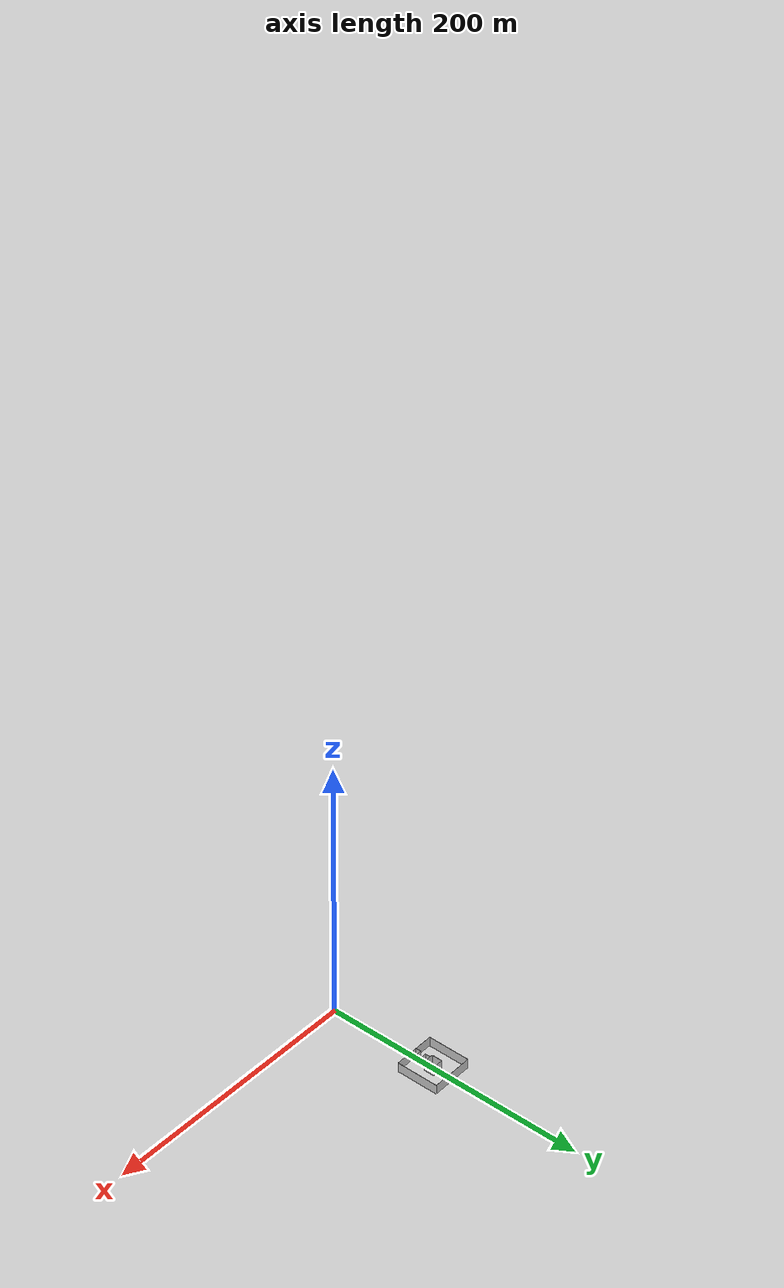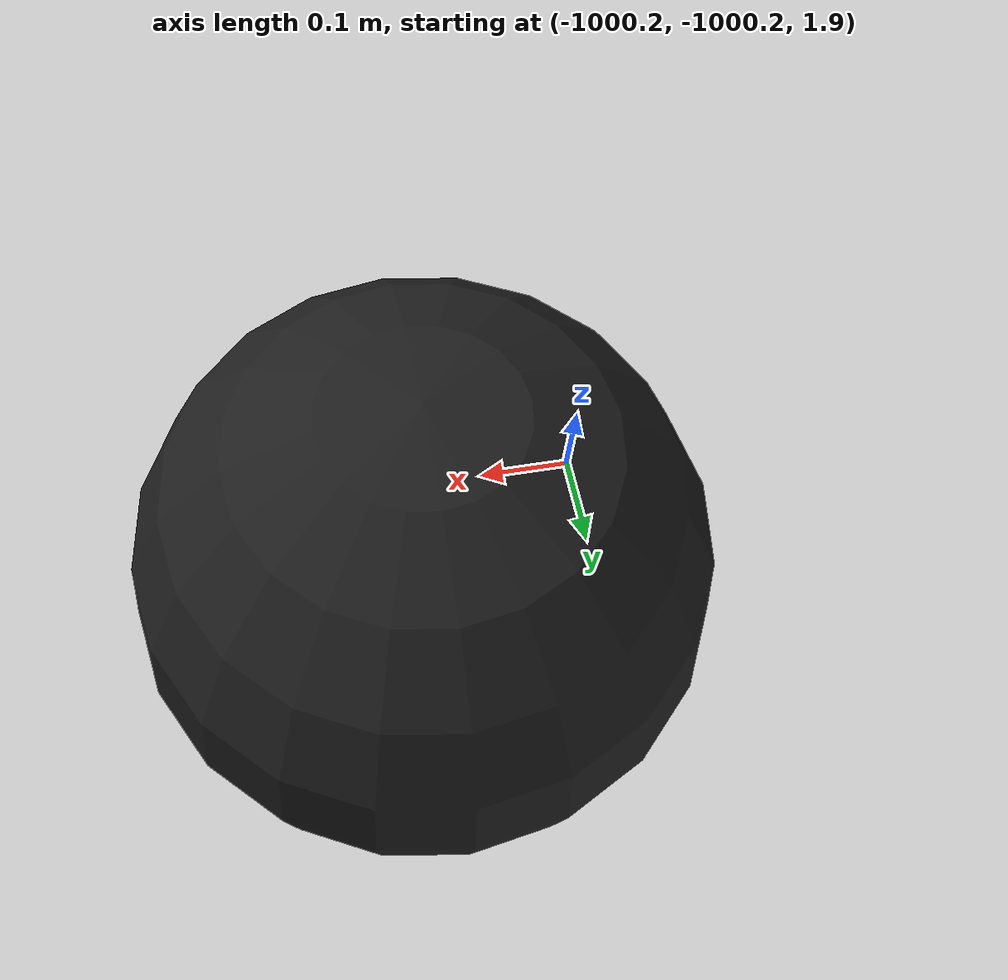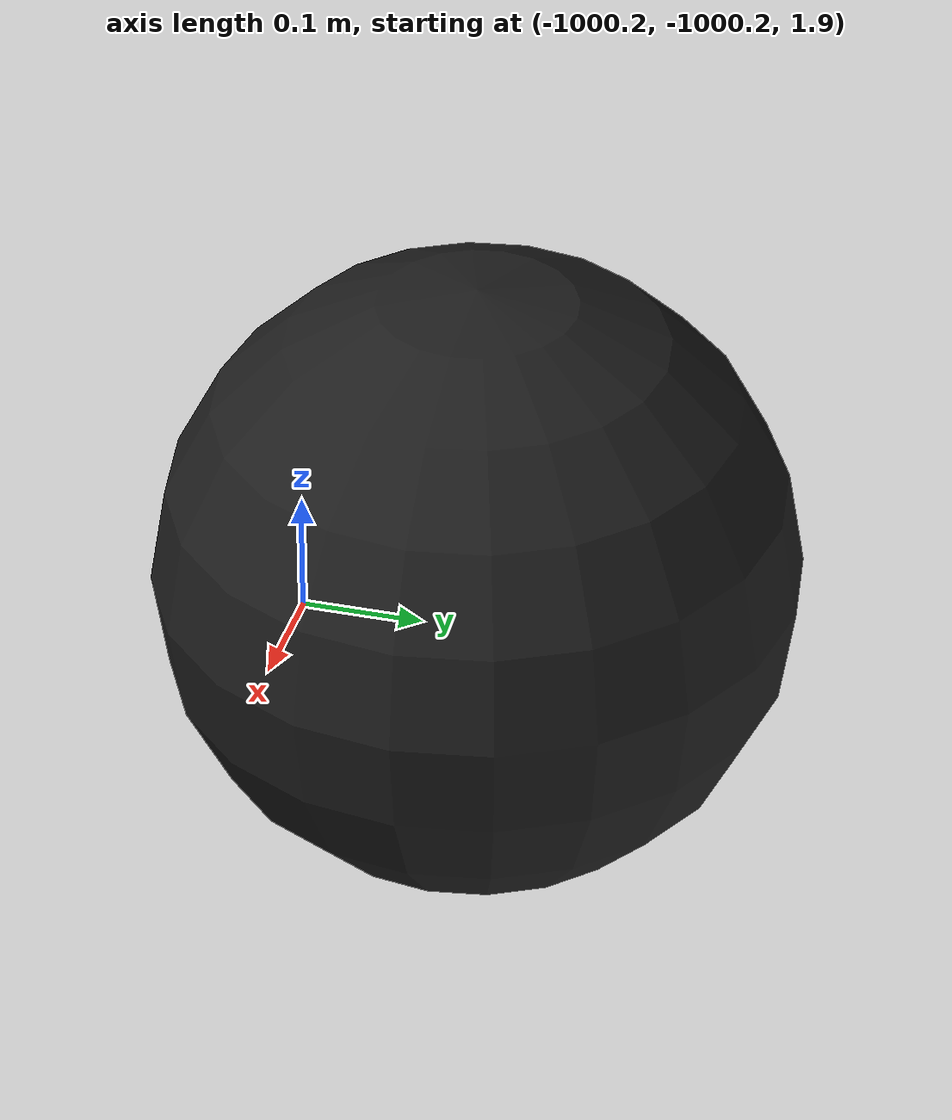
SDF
<sdf version="1.7">
 <world name="default">
  <plugin name="mrs_gazebo_static_transform_republisher_plugin" filename="libMRSGazeboStaticTransformRepublisher.so"/>
  <spherical_coordinates>
   <surface_model>EARTH_WGS84</surface_model>
   <latitude_deg>47.3977</latitude_deg>
   <longitude_deg>8.54559</longitude_deg>
   <elevation>0</elevation>
   <heading_deg>0</heading_deg>
  </spherical_coordinates>
  <physics name="default_physics" default="0" type="ode">
   <ode>
    <solver>
     <type>quick</type>
     <iters>10</iters>
     <sor>1.3</sor>
     <use_dynamic_moi_rescaling>0</use_dynamic_moi_rescaling>
    </solver>
    <constraints>
     <cfm>0</cfm>
     <erp>0.2</erp>
     <contact_max_correcting_vel>1000</contact_max_correcting_vel>
     <contact_surface_layer>0.001</contact_surface_layer>
    </constraints>
   </ode>
   <max_step_size>0.004</max_step_size>
   <real_time_factor>1</real_time_factor>
   <real_time_update_rate>250</real_time_update_rate>
  </physics>
  <scene><shadows>0</shadows><ambient>0.4 0.4 0.4 1</ambient><background>0.7 0.7 0.7 1</background></scene>
  <light name="sun" type="directional">
   <pose>0 0 1000 0.4 0.2 0</pose>
   <diffuse>1 1 1 1</diffuse>
   <specular>0.6 0.6 0.6 1</specular>
   <direction>0.1 0.1 -0.9</direction>
   <attenuation>
    <range>20</range>
    <constant>0.5</constant>
    <linear>0.01</linear>
    <quadratic>0.001</quadratic>
   </attenuation>
   <spot><inner_angle>0</inner_angle><outer_angle>0</outer_angle><falloff>0</falloff></spot>
  </light>
  <model name="the_void">
   <static>1</static>
   <link name="link">
    <pose>0 0 0.1 0 -0 0</pose>
    <visual name="the_void">
     <pose>0 0 2 0 -0 0</pose>
     <geometry><sphere><radius>0.25</radius></sphere></geometry>
     <material>
      <script><uri>file://media/materials/scripts/Gazebo.material</uri><name>Gazebo/Black</name></script>
     </material>
    </visual>
   </link>
   <pose>-1000 -1000 0 0 -0 0</pose>
  </model>
  <plugin name="mrs_gazebo_rviz_cam_synchronizer" filename="libMRSGazeboRvizCameraSynchronizer.so">
   <target_frame_id>gazebo_user_camera</target_frame_id>
   <world_origin_frame_id>uav1/gps_origin</world_origin_frame_id>
   <frame_to_follow>uav1</frame_to_follow>
  </plugin>
  <gravity>0 0 -9.8066</gravity>
  <magnetic_field>6e-06 2.3e-05 -4.2e-05</magnetic_field>
  <atmosphere type="adiabatic"/>
  <model name="wall_32_pose_90_narrow">
   <static>1</static>
   <link name="link">
    <collision name="collision1">
     <pose>0 0 3.25 1.5708 -0 0</pose>
     <geometry><box><size>32 7.5 0.05</size></box></geometry>
    </collision>
    <collision name="collision2">
     <pose>16 16 3.25 1.5708 -0 1.5708</pose>
     <geometry><box><size>32 7.5 0.05</size></box></geometry>
    </collision>
    <collision name="collision3">
     <pose>0 32 3.25 1.5708 -0 -3.14159</pose>
     <geometry><box><size>32 7.5 0.05</size></box></geometry>
    </collision>
    <collision name="collision4">
     <pose>-16 16 3.25 1.5708 -0 1.5708</pose>
     <geometry><box><size>32 7.5 0.05</size></box></geometry>
    </collision>
    <visual name="visual1">
     <pose>0 0 3.25 1.5708 -0 0</pose>
     <geometry><box><size>32 7.5 0.05</size></box></geometry>
    </visual>
    <visual name="visual2">
     <pose>16 16 3.25 1.5708 -0 1.5708</pose>
     <geometry><box><size>32 7.5 0.05</size></box></geometry>
    </visual>
    <visual name="visual3">
     <pose>0 32 3.25 1.5708 -0 -3.14159</pose>
     <geometry><box><size>32 7.5 0.05</size></box></geometry>
    </visual>
    <visual name="visual4">
     <pose>-16 16 3.25 1.5708 -0 1.5708</pose>
     <geometry><box><size>32 7.5 0.05</size></box></geometry>
    </visual>
    <collision name="collision5">
     <pose>0 12 3.25 1.5708 -0 0</pose>
     <geometry><box><size>8 7.5 0.05</size></box></geometry>
    </collision>
    <collision name="collision6">
     <pose>4 16 3.25 1.5708 -0 1.5708</pose>
     <geometry><box><size>8 7.5 0.05</size></box></geometry>
    </collision>
    <collision name="collision7">
     <pose>0 20 3.25 1.5708 -0 -3.14159</pose>
     <geometry><box><size>8 7.5 0.05</size></box></geometry>
    </collision>
    <collision name="collision8">
     <pose>-4 16 3.25 1.5708 -0 1.5708</pose>
     <geometry><box><size>8 7.5 0.05</size></box></geometry>
    </collision>
    <visual name="visual5">
     <pose>0 12 3.25 1.5708 -0 0</pose>
     <geometry><box><size>8 7.5 0.05</size></box></geometry>
    </visual>
    <visual name="visual6">
     <pose>4 16 3.25 1.5708 -0 1.5708</pose>
     <geometry><box><size>8 7.5 0.05</size></box></geometry>
    </visual>
    <visual name="visual7">
     <pose>0 20 3.25 1.5708 -0 -3.14159</pose>
     <geometry><box><size>8 7.5 0.05</size></box></geometry>
    </visual>
    <visual name="visual8">
     <pose>-4 16 3.25 1.5708 -0 1.5708</pose>
     <geometry><box><size>8 7.5 0.05</size></box></geometry>
    </visual>
    <collision name="fourunitscollision1">
     <pose>0 8 3.25 1.5708 -0 0</pose>
     <geometry><box><size>4 7.5 0.05</size></box></geometry>
    </collision>
    <collision name="fourunitscollision2">
     <pose>2 10 3.25 1.5708 -0 1.5708</pose>
     <geometry><box><size>4 7.5 0.05</size></box></geometry>
    </collision>
    <collision name="fourunitscollision3">
     <pose>-2 10 3.25 1.5708 -0 1.5708</pose>
     <geometry><box><size>4 7.5 0.05</size></box></geometry>
    </collision>
    <visual name="fourunitsvisual1">
     <pose>0 8 3.25 1.5708 -0 0</pose>
     <geometry><box><size>4 7.5 0.05</size></box></geometry>
    </visual>
    <visual name="fourunitsvisual2">
     <pose>2 10 3.25 1.5708 -0 1.5708</pose>
     <geometry><box><size>4 7.5 0.05</size></box></geometry>
    </visual>
    <visual name="fourunitsvisual3">
     <pose>-2 10 3.25 1.5708 -0 1.5708</pose>
     <geometry><box><size>4 7.5 0.05</size></box></geometry>
    </visual>
    <collision name="fourunitscollision4">
     <pose>0 4 3.25 1.5708 -0 0</pose>
     <geometry><box><size>4 7.5 0.05</size></box></geometry>
    </collision>
    <collision name="fourunitscollision5">
     <pose>2 2 3.25 1.5708 -0 1.5708</pose>
     <geometry><box><size>4 7.5 0.05</size></box></geometry>
    </collision>
    <collision name="fourunitscollision6">
     <pose>-2 2 3.25 1.5708 -0 1.5708</pose>
     <geometry><box><size>4 7.5 0.05</size></box></geometry>
    </collision>
    <visual name="fourunitsvisual4">
     <pose>0 4 3.25 1.5708 -0 0</pose>
     <geometry><box><size>4 7.5 0.05</size></box></geometry>
    </visual>
    <visual name="fourunitsvisual5">
     <pose>2 2 3.25 1.5708 -0 1.5708</pose>
     <geometry><box><size>4 7.5 0.05</size></box></geometry>
    </visual>
    <visual name="fourunitsvisual6">
     <pose>-2 2 3.25 1.5708 -0 1.5708</pose>
     <geometry><box><size>4 7.5 0.05</size></box></geometry>
    </visual>
   </link>
   <pose>0.590401 68.8744 0 0 -0 0</pose>
  </model>
 </world>
</sdf>
